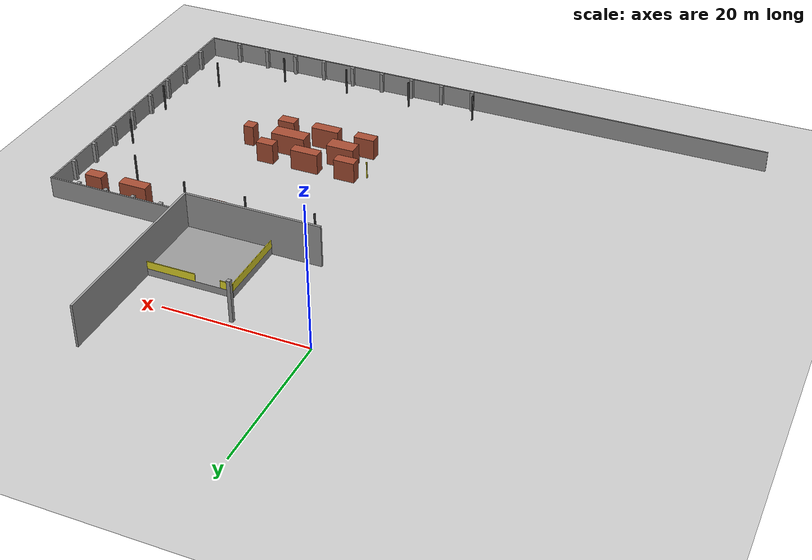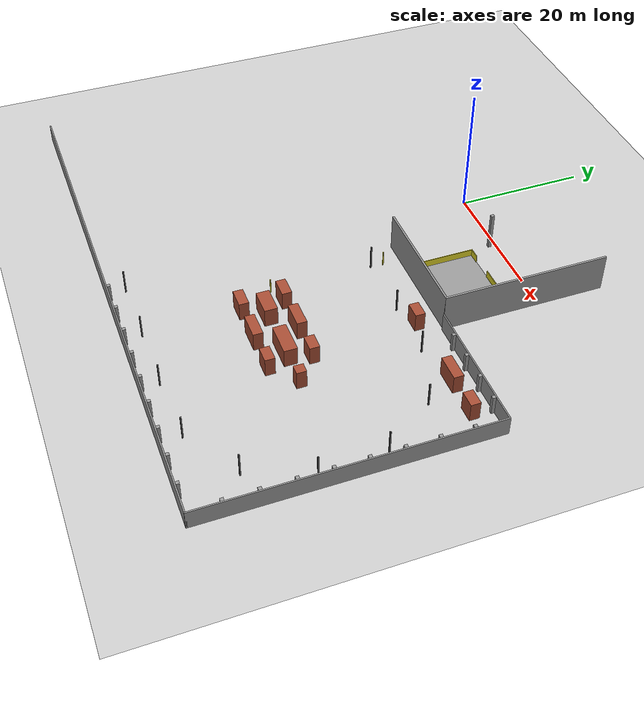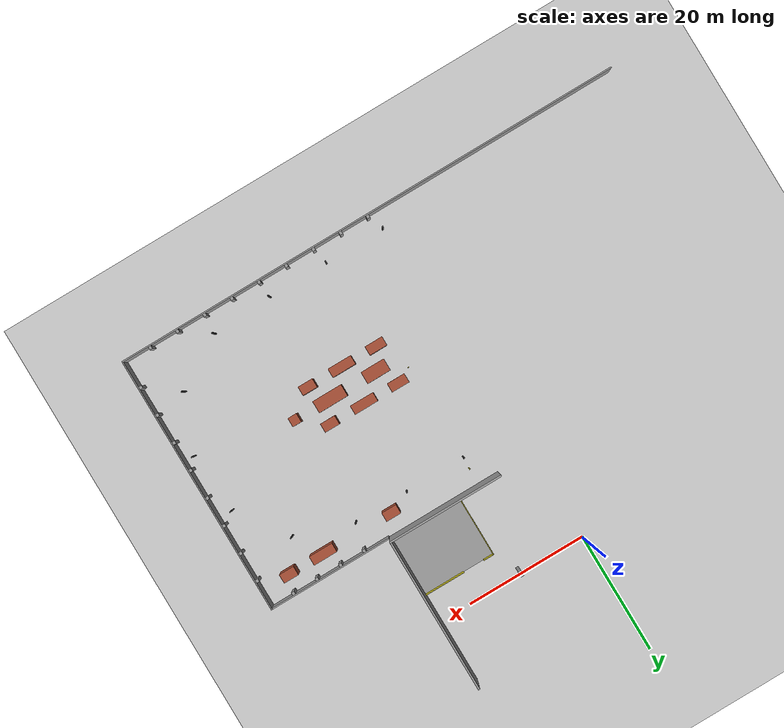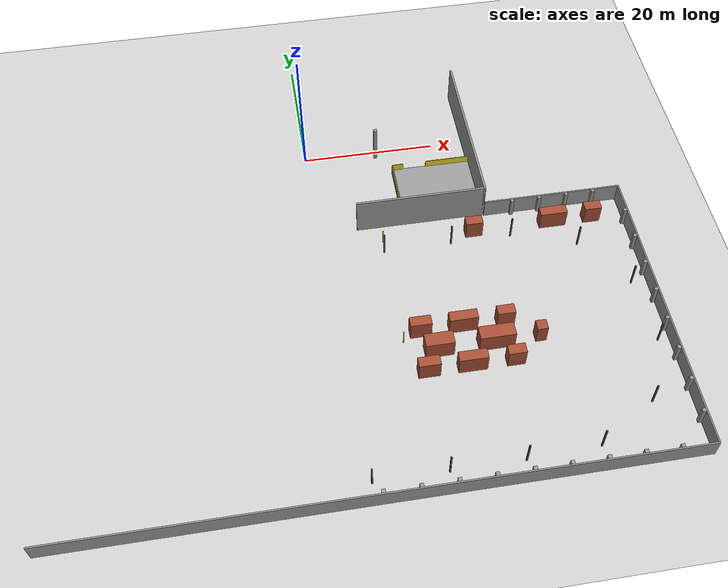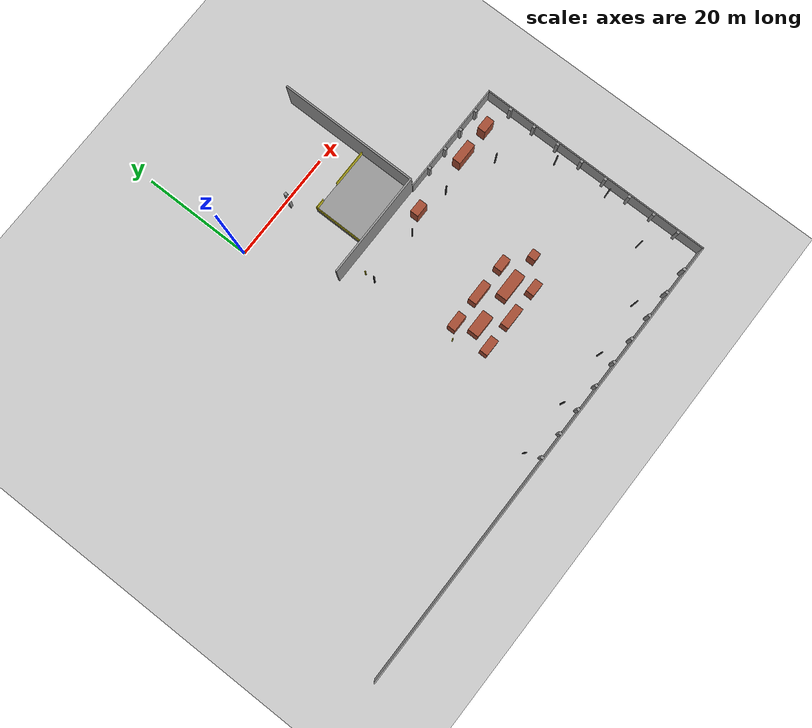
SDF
<sdf version="1.6">
 <world name="default">
  <include><uri>model://ground_plane</uri></include>
  <include><uri>model://sun</uri></include>
  <model name="mezz_platform">
   <static>true</static>
   <pose>19.0000 -10.0000 0.5000 0.000000 0.000000 0.000000</pose>
   <link name="link">
    <collision name="c"><geometry><box><size>12.0000 10.0000 1.0000</size></box></geometry></collision>
    <visual name="v">
     <geometry><box><size>12.0000 10.0000 1.0000</size></box></geometry>
     <material>
      <script><uri>file://media/materials/scripts/gazebo.material</uri><name>Gazebo/Grey</name></script>
     </material>
    </visual>
   </link>
  </model>
  <model name="mezz_guard_west">
   <static>true</static>
   <pose>13.0500 -10.0000 1.5500 0.000000 0.000000 0.000000</pose>
   <link name="link">
    <collision name="c"><geometry><box><size>0.1000 10.0000 1.1000</size></box></geometry></collision>
    <visual name="v">
     <geometry><box><size>0.1000 10.0000 1.1000</size></box></geometry>
     <material>
      <script><uri>file://media/materials/scripts/gazebo.material</uri><name>Gazebo/Yellow</name></script>
     </material>
    </visual>
   </link>
  </model>
  <model name="mezz_guard_north_0">
   <static>true</static>
   <pose>13.8750 -5.0500 1.5500 0.000000 0.000000 0.000000</pose>
   <link name="link">
    <collision name="c"><geometry><box><size>1.7500 0.1000 1.1000</size></box></geometry></collision>
    <visual name="v">
     <geometry><box><size>1.7500 0.1000 1.1000</size></box></geometry>
     <material>
      <script><uri>file://media/materials/scripts/gazebo.material</uri><name>Gazebo/Yellow</name></script>
     </material>
    </visual>
   </link>
  </model>
  <model name="mezz_guard_north_1">
   <static>true</static>
   <pose>21.6250 -5.0500 1.5500 0.000000 0.000000 0.000000</pose>
   <link name="link">
    <collision name="c"><geometry><box><size>6.7500 0.1000 1.1000</size></box></geometry></collision>
    <visual name="v">
     <geometry><box><size>6.7500 0.1000 1.1000</size></box></geometry>
     <material>
      <script><uri>file://media/materials/scripts/gazebo.material</uri><name>Gazebo/Yellow</name></script>
     </material>
    </visual>
   </link>
  </model>
  <model name="wall_s_1">
   <static>true</static>
   <pose>15.6500 -15.1500 3.0000 0.000000 0.000000 0.000000</pose>
   <link name="link">
    <collision name="c"><geometry><box><size>19.3000 0.3000 6.0000</size></box></geometry></collision>
    <visual name="v">
     <geometry><box><size>19.3000 0.3000 6.0000</size></box></geometry>
     <material>
      <script><uri>file://media/materials/scripts/gazebo.material</uri><name>Gazebo/Grey</name></script>
     </material>
    </visual>
   </link>
  </model>
  <model name="wall_e_0">
   <static>true</static>
   <pose>25.1500 -2.5000 3.0000 0.000000 0.000000 0.000000</pose>
   <link name="link">
    <collision name="c"><geometry><box><size>0.3000 25.6000 6.0000</size></box></geometry></collision>
    <visual name="v">
     <geometry><box><size>0.3000 25.6000 6.0000</size></box></geometry>
     <material>
      <script><uri>file://media/materials/scripts/gazebo.material</uri><name>Gazebo/Grey</name></script>
     </material>
    </visual>
   </link>
  </model>
  <model name="fence_s">
   <static>true</static>
   <pose>3.0000 -58.9000 1.5000 0.000000 0.000000 0.000000</pose>
   <link name="link">
    <collision name="c"><geometry><box><size>86.0000 0.2000 3.0000</size></box></geometry></collision>
    <visual name="v">
     <geometry><box><size>86.0000 0.2000 3.0000</size></box></geometry>
     <material>
      <script><uri>file://media/materials/scripts/gazebo.material</uri><name>Gazebo/Grey</name></script>
     </material>
    </visual>
   </link>
  </model>
  <model name="fence_e">
   <static>true</static>
   <pose>45.9000 -37.1500 1.5000 0.000000 0.000000 0.000000</pose>
   <link name="link">
    <collision name="c"><geometry><box><size>0.2000 43.7000 3.0000</size></box></geometry></collision>
    <visual name="v">
     <geometry><box><size>0.2000 43.7000 3.0000</size></box></geometry>
     <material>
      <script><uri>file://media/materials/scripts/gazebo.material</uri><name>Gazebo/Grey</name></script>
     </material>
    </visual>
   </link>
  </model>
  <model name="fence_n_e">
   <static>true</static>
   <pose>35.6500 -15.4000 1.5000 0.000000 0.000000 0.000000</pose>
   <link name="link">
    <collision name="c"><geometry><box><size>20.7000 0.2000 3.0000</size></box></geometry></collision>
    <visual name="v">
     <geometry><box><size>20.7000 0.2000 3.0000</size></box></geometry>
     <material>
      <script><uri>file://media/materials/scripts/gazebo.material</uri><name>Gazebo/Grey</name></script>
     </material>
    </visual>
   </link>
  </model>
  <model name="fence_post_8">
   <static>true</static>
   <pose>3.0000 -58.5500 1.5000 0.000000 0.000000 0.000000</pose>
   <link name="link">
    <collision name="c"><geometry><box><size>0.5000 0.5000 3.0000</size></box></geometry></collision>
    <visual name="v">
     <geometry><box><size>0.5000 0.5000 3.0000</size></box></geometry>
     <material>
      <script><uri>file://media/materials/scripts/gazebo.material</uri><name>Gazebo/Grey</name></script>
     </material>
    </visual>
   </link>
  </model>
  <model name="fence_post_9">
   <static>true</static>
   <pose>7.7778 -58.5500 1.5000 0.000000 0.000000 0.000000</pose>
   <link name="link">
    <collision name="c"><geometry><box><size>0.5000 0.5000 3.0000</size></box></geometry></collision>
    <visual name="v">
     <geometry><box><size>0.5000 0.5000 3.0000</size></box></geometry>
     <material>
      <script><uri>file://media/materials/scripts/gazebo.material</uri><name>Gazebo/Grey</name></script>
     </material>
    </visual>
   </link>
  </model>
  <model name="fence_post_10">
   <static>true</static>
   <pose>12.5556 -58.5500 1.5000 0.000000 0.000000 0.000000</pose>
   <link name="link">
    <collision name="c"><geometry><box><size>0.5000 0.5000 3.0000</size></box></geometry></collision>
    <visual name="v">
     <geometry><box><size>0.5000 0.5000 3.0000</size></box></geometry>
     <material>
      <script><uri>file://media/materials/scripts/gazebo.material</uri><name>Gazebo/Grey</name></script>
     </material>
    </visual>
   </link>
  </model>
  <model name="fence_post_11">
   <static>true</static>
   <pose>17.3333 -58.5500 1.5000 0.000000 0.000000 0.000000</pose>
   <link name="link">
    <collision name="c"><geometry><box><size>0.5000 0.5000 3.0000</size></box></geometry></collision>
    <visual name="v">
     <geometry><box><size>0.5000 0.5000 3.0000</size></box></geometry>
     <material>
      <script><uri>file://media/materials/scripts/gazebo.material</uri><name>Gazebo/Grey</name></script>
     </material>
    </visual>
   </link>
  </model>
  <model name="fence_post_12">
   <static>true</static>
   <pose>22.1111 -58.5500 1.5000 0.000000 0.000000 0.000000</pose>
   <link name="link">
    <collision name="c"><geometry><box><size>0.5000 0.5000 3.0000</size></box></geometry></collision>
    <visual name="v">
     <geometry><box><size>0.5000 0.5000 3.0000</size></box></geometry>
     <material>
      <script><uri>file://media/materials/scripts/gazebo.material</uri><name>Gazebo/Grey</name></script>
     </material>
    </visual>
   </link>
  </model>
  <model name="fence_post_13">
   <static>true</static>
   <pose>26.8889 -58.5500 1.5000 0.000000 0.000000 0.000000</pose>
   <link name="link">
    <collision name="c"><geometry><box><size>0.5000 0.5000 3.0000</size></box></geometry></collision>
    <visual name="v">
     <geometry><box><size>0.5000 0.5000 3.0000</size></box></geometry>
     <material>
      <script><uri>file://media/materials/scripts/gazebo.material</uri><name>Gazebo/Grey</name></script>
     </material>
    </visual>
   </link>
  </model>
  <model name="fence_post_14">
   <static>true</static>
   <pose>31.6667 -58.5500 1.5000 0.000000 0.000000 0.000000</pose>
   <link name="link">
    <collision name="c"><geometry><box><size>0.5000 0.5000 3.0000</size></box></geometry></collision>
    <visual name="v">
     <geometry><box><size>0.5000 0.5000 3.0000</size></box></geometry>
     <material>
      <script><uri>file://media/materials/scripts/gazebo.material</uri><name>Gazebo/Grey</name></script>
     </material>
    </visual>
   </link>
  </model>
  <model name="fence_post_15">
   <static>true</static>
   <pose>36.4444 -58.5500 1.5000 0.000000 0.000000 0.000000</pose>
   <link name="link">
    <collision name="c"><geometry><box><size>0.5000 0.5000 3.0000</size></box></geometry></collision>
    <visual name="v">
     <geometry><box><size>0.5000 0.5000 3.0000</size></box></geometry>
     <material>
      <script><uri>file://media/materials/scripts/gazebo.material</uri><name>Gazebo/Grey</name></script>
     </material>
    </visual>
   </link>
  </model>
  <model name="fence_post_16">
   <static>true</static>
   <pose>41.2222 -58.5500 1.5000 0.000000 0.000000 0.000000</pose>
   <link name="link">
    <collision name="c"><geometry><box><size>0.5000 0.5000 3.0000</size></box></geometry></collision>
    <visual name="v">
     <geometry><box><size>0.5000 0.5000 3.0000</size></box></geometry>
     <material>
      <script><uri>file://media/materials/scripts/gazebo.material</uri><name>Gazebo/Grey</name></script>
     </material>
    </visual>
   </link>
  </model>
  <model name="fence_post_25">
   <static>true</static>
   <pose>45.5500 -54.1444 1.5000 0.000000 0.000000 0.000000</pose>
   <link name="link">
    <collision name="c"><geometry><box><size>0.5000 0.5000 3.0000</size></box></geometry></collision>
    <visual name="v">
     <geometry><box><size>0.5000 0.5000 3.0000</size></box></geometry>
     <material>
      <script><uri>file://media/materials/scripts/gazebo.material</uri><name>Gazebo/Grey</name></script>
     </material>
    </visual>
   </link>
  </model>
  <model name="fence_post_26">
   <static>true</static>
   <pose>45.5500 -49.2889 1.5000 0.000000 0.000000 0.000000</pose>
   <link name="link">
    <collision name="c"><geometry><box><size>0.5000 0.5000 3.0000</size></box></geometry></collision>
    <visual name="v">
     <geometry><box><size>0.5000 0.5000 3.0000</size></box></geometry>
     <material>
      <script><uri>file://media/materials/scripts/gazebo.material</uri><name>Gazebo/Grey</name></script>
     </material>
    </visual>
   </link>
  </model>
  <model name="fence_post_27">
   <static>true</static>
   <pose>45.5500 -44.4333 1.5000 0.000000 0.000000 0.000000</pose>
   <link name="link">
    <collision name="c"><geometry><box><size>0.5000 0.5000 3.0000</size></box></geometry></collision>
    <visual name="v">
     <geometry><box><size>0.5000 0.5000 3.0000</size></box></geometry>
     <material>
      <script><uri>file://media/materials/scripts/gazebo.material</uri><name>Gazebo/Grey</name></script>
     </material>
    </visual>
   </link>
  </model>
  <model name="fence_post_28">
   <static>true</static>
   <pose>45.5500 -39.5778 1.5000 0.000000 0.000000 0.000000</pose>
   <link name="link">
    <collision name="c"><geometry><box><size>0.5000 0.5000 3.0000</size></box></geometry></collision>
    <visual name="v">
     <geometry><box><size>0.5000 0.5000 3.0000</size></box></geometry>
     <material>
      <script><uri>file://media/materials/scripts/gazebo.material</uri><name>Gazebo/Grey</name></script>
     </material>
    </visual>
   </link>
  </model>
  <model name="fence_post_29">
   <static>true</static>
   <pose>45.5500 -34.7222 1.5000 0.000000 0.000000 0.000000</pose>
   <link name="link">
    <collision name="c"><geometry><box><size>0.5000 0.5000 3.0000</size></box></geometry></collision>
    <visual name="v">
     <geometry><box><size>0.5000 0.5000 3.0000</size></box></geometry>
     <material>
      <script><uri>file://media/materials/scripts/gazebo.material</uri><name>Gazebo/Grey</name></script>
     </material>
    </visual>
   </link>
  </model>
  <model name="fence_post_30">
   <static>true</static>
   <pose>45.5500 -29.8667 1.5000 0.000000 0.000000 0.000000</pose>
   <link name="link">
    <collision name="c"><geometry><box><size>0.5000 0.5000 3.0000</size></box></geometry></collision>
    <visual name="v">
     <geometry><box><size>0.5000 0.5000 3.0000</size></box></geometry>
     <material>
      <script><uri>file://media/materials/scripts/gazebo.material</uri><name>Gazebo/Grey</name></script>
     </material>
    </visual>
   </link>
  </model>
  <model name="fence_post_31">
   <static>true</static>
   <pose>45.5500 -25.0111 1.5000 0.000000 0.000000 0.000000</pose>
   <link name="link">
    <collision name="c"><geometry><box><size>0.5000 0.5000 3.0000</size></box></geometry></collision>
    <visual name="v">
     <geometry><box><size>0.5000 0.5000 3.0000</size></box></geometry>
     <material>
      <script><uri>file://media/materials/scripts/gazebo.material</uri><name>Gazebo/Grey</name></script>
     </material>
    </visual>
   </link>
  </model>
  <model name="fence_post_32">
   <static>true</static>
   <pose>45.5500 -20.1556 1.5000 0.000000 0.000000 0.000000</pose>
   <link name="link">
    <collision name="c"><geometry><box><size>0.5000 0.5000 3.0000</size></box></geometry></collision>
    <visual name="v">
     <geometry><box><size>0.5000 0.5000 3.0000</size></box></geometry>
     <material>
      <script><uri>file://media/materials/scripts/gazebo.material</uri><name>Gazebo/Grey</name></script>
     </material>
    </visual>
   </link>
  </model>
  <model name="fence_post_35">
   <static>true</static>
   <pose>29.4400 -15.7500 1.5000 0.000000 0.000000 0.000000</pose>
   <link name="link">
    <collision name="c"><geometry><box><size>0.5000 0.5000 3.0000</size></box></geometry></collision>
    <visual name="v">
     <geometry><box><size>0.5000 0.5000 3.0000</size></box></geometry>
     <material>
      <script><uri>file://media/materials/scripts/gazebo.material</uri><name>Gazebo/Grey</name></script>
     </material>
    </visual>
   </link>
  </model>
  <model name="fence_post_36">
   <static>true</static>
   <pose>33.5800 -15.7500 1.5000 0.000000 0.000000 0.000000</pose>
   <link name="link">
    <collision name="c"><geometry><box><size>0.5000 0.5000 3.0000</size></box></geometry></collision>
    <visual name="v">
     <geometry><box><size>0.5000 0.5000 3.0000</size></box></geometry>
     <material>
      <script><uri>file://media/materials/scripts/gazebo.material</uri><name>Gazebo/Grey</name></script>
     </material>
    </visual>
   </link>
  </model>
  <model name="fence_post_37">
   <static>true</static>
   <pose>37.7200 -15.7500 1.5000 0.000000 0.000000 0.000000</pose>
   <link name="link">
    <collision name="c"><geometry><box><size>0.5000 0.5000 3.0000</size></box></geometry></collision>
    <visual name="v">
     <geometry><box><size>0.5000 0.5000 3.0000</size></box></geometry>
     <material>
      <script><uri>file://media/materials/scripts/gazebo.material</uri><name>Gazebo/Grey</name></script>
     </material>
    </visual>
   </link>
  </model>
  <model name="fence_post_38">
   <static>true</static>
   <pose>41.8600 -15.7500 1.5000 0.000000 0.000000 0.000000</pose>
   <link name="link">
    <collision name="c"><geometry><box><size>0.5000 0.5000 3.0000</size></box></geometry></collision>
    <visual name="v">
     <geometry><box><size>0.5000 0.5000 3.0000</size></box></geometry>
     <material>
      <script><uri>file://media/materials/scripts/gazebo.material</uri><name>Gazebo/Grey</name></script>
     </material>
    </visual>
   </link>
  </model>
  <model name="lamp_0">
   <static>true</static>
   <pose>28.3497 -20.0003 2.0000 0.000000 0.000000 0.000000</pose>
   <link name="link">
    <collision name="c"><geometry><box><size>0.2000 0.2000 4.0000</size></box></geometry></collision>
    <visual name="v">
     <geometry><box><size>0.2000 0.2000 4.0000</size></box></geometry>
     <material>
      <script><uri>file://media/materials/scripts/gazebo.material</uri><name>Gazebo/DarkGrey</name></script>
     </material>
    </visual>
   </link>
  </model>
  <model name="lamp_1">
   <static>true</static>
   <pose>37.7511 -23.1264 2.0000 0.000000 0.000000 0.000000</pose>
   <link name="link">
    <collision name="c"><geometry><box><size>0.2000 0.2000 4.0000</size></box></geometry></collision>
    <visual name="v">
     <geometry><box><size>0.2000 0.2000 4.0000</size></box></geometry>
     <material>
      <script><uri>file://media/materials/scripts/gazebo.material</uri><name>Gazebo/DarkGrey</name></script>
     </material>
    </visual>
   </link>
  </model>
  <model name="lamp_2">
   <static>true</static>
   <pose>43.5095 -31.1887 2.0000 0.000000 0.000000 0.000000</pose>
   <link name="link">
    <collision name="c"><geometry><box><size>0.2000 0.2000 4.0000</size></box></geometry></collision>
    <visual name="v">
     <geometry><box><size>0.2000 0.2000 4.0000</size></box></geometry>
     <material>
      <script><uri>file://media/materials/scripts/gazebo.material</uri><name>Gazebo/DarkGrey</name></script>
     </material>
    </visual>
   </link>
  </model>
  <model name="lamp_3">
   <static>true</static>
   <pose>44.2053 -41.1957 2.0000 0.000000 0.000000 0.000000</pose>
   <link name="link">
    <collision name="c"><geometry><box><size>0.2000 0.2000 4.0000</size></box></geometry></collision>
    <visual name="v">
     <geometry><box><size>0.2000 0.2000 4.0000</size></box></geometry>
     <material>
      <script><uri>file://media/materials/scripts/gazebo.material</uri><name>Gazebo/DarkGrey</name></script>
     </material>
    </visual>
   </link>
  </model>
  <model name="lamp_4">
   <static>true</static>
   <pose>40.4424 -50.3608 2.0000 0.000000 0.000000 0.000000</pose>
   <link name="link">
    <collision name="c"><geometry><box><size>0.2000 0.2000 4.0000</size></box></geometry></collision>
    <visual name="v">
     <geometry><box><size>0.2000 0.2000 4.0000</size></box></geometry>
     <material>
      <script><uri>file://media/materials/scripts/gazebo.material</uri><name>Gazebo/DarkGrey</name></script>
     </material>
    </visual>
   </link>
  </model>
  <model name="lamp_5">
   <static>true</static>
   <pose>32.0045 -55.5533 2.0000 0.000000 0.000000 0.000000</pose>
   <link name="link">
    <collision name="c"><geometry><box><size>0.2000 0.2000 4.0000</size></box></geometry></collision>
    <visual name="v">
     <geometry><box><size>0.2000 0.2000 4.0000</size></box></geometry>
     <material>
      <script><uri>file://media/materials/scripts/gazebo.material</uri><name>Gazebo/DarkGrey</name></script>
     </material>
    </visual>
   </link>
  </model>
  <model name="lamp_6">
   <static>true</static>
   <pose>21.9500 -56.0000 2.0000 0.000000 0.000000 0.000000</pose>
   <link name="link">
    <collision name="c"><geometry><box><size>0.2000 0.2000 4.0000</size></box></geometry></collision>
    <visual name="v">
     <geometry><box><size>0.2000 0.2000 4.0000</size></box></geometry>
     <material>
      <script><uri>file://media/materials/scripts/gazebo.material</uri><name>Gazebo/DarkGrey</name></script>
     </material>
    </visual>
   </link>
  </model>
  <model name="lamp_7">
   <static>true</static>
   <pose>11.9500 -56.0000 2.0000 0.000000 0.000000 0.000000</pose>
   <link name="link">
    <collision name="c"><geometry><box><size>0.2000 0.2000 4.0000</size></box></geometry></collision>
    <visual name="v">
     <geometry><box><size>0.2000 0.2000 4.0000</size></box></geometry>
     <material>
      <script><uri>file://media/materials/scripts/gazebo.material</uri><name>Gazebo/DarkGrey</name></script>
     </material>
    </visual>
   </link>
  </model>
  <model name="lamp_8">
   <static>true</static>
   <pose>1.9500 -56.0000 2.0000 0.000000 0.000000 0.000000</pose>
   <link name="link">
    <collision name="c"><geometry><box><size>0.2000 0.2000 4.0000</size></box></geometry></collision>
    <visual name="v">
     <geometry><box><size>0.2000 0.2000 4.0000</size></box></geometry>
     <material>
      <script><uri>file://media/materials/scripts/gazebo.material</uri><name>Gazebo/DarkGrey</name></script>
     </material>
    </visual>
   </link>
  </model>
  <model name="lamp_18">
   <static>true</static>
   <pose>9.3500 -20.0000 2.0000 0.000000 0.000000 0.000000</pose>
   <link name="link">
    <collision name="c"><geometry><box><size>0.2000 0.2000 4.0000</size></box></geometry></collision>
    <visual name="v">
     <geometry><box><size>0.2000 0.2000 4.0000</size></box></geometry>
     <material>
      <script><uri>file://media/materials/scripts/gazebo.material</uri><name>Gazebo/DarkGrey</name></script>
     </material>
    </visual>
   </link>
  </model>
  <model name="lamp_19">
   <static>true</static>
   <pose>19.3500 -20.0000 2.0000 0.000000 0.000000 0.000000</pose>
   <link name="link">
    <collision name="c"><geometry><box><size>0.2000 0.2000 4.0000</size></box></geometry></collision>
    <visual name="v">
     <geometry><box><size>0.2000 0.2000 4.0000</size></box></geometry>
     <material>
      <script><uri>file://media/materials/scripts/gazebo.material</uri><name>Gazebo/DarkGrey</name></script>
     </material>
    </visual>
   </link>
  </model>
  <model name="signal_0">
   <static>true</static>
   <pose>9.4500 -35.9500 1.2500 0.000000 0.000000 0.000000</pose>
   <link name="link">
    <collision name="c"><geometry><box><size>0.1500 0.1500 2.5000</size></box></geometry></collision>
    <visual name="v">
     <geometry><box><size>0.1500 0.1500 2.5000</size></box></geometry>
     <material>
      <script><uri>file://media/materials/scripts/gazebo.material</uri><name>Gazebo/Yellow</name></script>
     </material>
    </visual>
   </link>
  </model>
  <model name="signal_3">
   <static>true</static>
   <pose>9.4500 -18.0500 1.2500 0.000000 0.000000 0.000000</pose>
   <link name="link">
    <collision name="c"><geometry><box><size>0.1500 0.1500 2.5000</size></box></geometry></collision>
    <visual name="v">
     <geometry><box><size>0.1500 0.1500 2.5000</size></box></geometry>
     <material>
      <script><uri>file://media/materials/scripts/gazebo.material</uri><name>Gazebo/Yellow</name></script>
     </material>
    </visual>
   </link>
  </model>
  <model name="building_3">
   <static>true</static>
   <pose>14.0000 -38.0000 1.5000 0.000000 0.000000 0.000000</pose>
   <link name="link">
    <collision name="c"><geometry><box><size>4.0000 2.0000 3.0000</size></box></geometry></collision>
    <visual name="v">
     <geometry><box><size>4.0000 2.0000 3.0000</size></box></geometry>
     <material>
      <script><uri>file://media/materials/scripts/gazebo.material</uri><name>Gazebo/Bricks</name></script>
     </material>
    </visual>
   </link>
  </model>
  <model name="building_4">
   <static>true</static>
   <pose>22.0000 -38.0000 1.5000 0.000000 0.000000 0.000000</pose>
   <link name="link">
    <collision name="c"><geometry><box><size>5.0000 2.0000 3.0000</size></box></geometry></collision>
    <visual name="v">
     <geometry><box><size>5.0000 2.0000 3.0000</size></box></geometry>
     <material>
      <script><uri>file://media/materials/scripts/gazebo.material</uri><name>Gazebo/Bricks</name></script>
     </material>
    </visual>
   </link>
  </model>
  <model name="building_5">
   <static>true</static>
   <pose>28.2500 -38.0000 1.5000 0.000000 0.000000 0.000000</pose>
   <link name="link">
    <collision name="c"><geometry><box><size>1.5000 1.5000 3.0000</size></box></geometry></collision>
    <visual name="v">
     <geometry><box><size>1.5000 1.5000 3.0000</size></box></geometry>
     <material>
      <script><uri>file://media/materials/scripts/gazebo.material</uri><name>Gazebo/Bricks</name></script>
     </material>
    </visual>
   </link>
  </model>
  <model name="building_9">
   <static>true</static>
   <pose>12.0000 -34.7500 1.5000 0.000000 0.000000 0.000000</pose>
   <link name="link">
    <collision name="c"><geometry><box><size>3.0000 1.5000 3.0000</size></box></geometry></collision>
    <visual name="v">
     <geometry><box><size>3.0000 1.5000 3.0000</size></box></geometry>
     <material>
      <script><uri>file://media/materials/scripts/gazebo.material</uri><name>Gazebo/Bricks</name></script>
     </material>
    </visual>
   </link>
  </model>
  <model name="building_10">
   <static>true</static>
   <pose>18.0000 -34.7500 1.5000 0.000000 0.000000 0.000000</pose>
   <link name="link">
    <collision name="c"><geometry><box><size>4.0000 1.5000 3.0000</size></box></geometry></collision>
    <visual name="v">
     <geometry><box><size>4.0000 1.5000 3.0000</size></box></geometry>
     <material>
      <script><uri>file://media/materials/scripts/gazebo.material</uri><name>Gazebo/Bricks</name></script>
     </material>
    </visual>
   </link>
  </model>
  <model name="building_11">
   <static>true</static>
   <pose>24.0000 -34.7500 1.5000 0.000000 0.000000 0.000000</pose>
   <link name="link">
    <collision name="c"><geometry><box><size>2.5000 1.5000 3.0000</size></box></geometry></collision>
    <visual name="v">
     <geometry><box><size>2.5000 1.5000 3.0000</size></box></geometry>
     <material>
      <script><uri>file://media/materials/scripts/gazebo.material</uri><name>Gazebo/Bricks</name></script>
     </material>
    </visual>
   </link>
  </model>
  <model name="building_15">
   <static>true</static>
   <pose>12.0000 -41.2500 1.5000 0.000000 0.000000 0.000000</pose>
   <link name="link">
    <collision name="c"><geometry><box><size>3.0000 1.5000 3.0000</size></box></geometry></collision>
    <visual name="v">
     <geometry><box><size>3.0000 1.5000 3.0000</size></box></geometry>
     <material>
      <script><uri>file://media/materials/scripts/gazebo.material</uri><name>Gazebo/Bricks</name></script>
     </material>
    </visual>
   </link>
  </model>
  <model name="building_16">
   <static>true</static>
   <pose>18.0000 -41.2500 1.5000 0.000000 0.000000 0.000000</pose>
   <link name="link">
    <collision name="c"><geometry><box><size>4.0000 1.5000 3.0000</size></box></geometry></collision>
    <visual name="v">
     <geometry><box><size>4.0000 1.5000 3.0000</size></box></geometry>
     <material>
      <script><uri>file://media/materials/scripts/gazebo.material</uri><name>Gazebo/Bricks</name></script>
     </material>
    </visual>
   </link>
  </model>
  <model name="building_17">
   <static>true</static>
   <pose>24.0000 -41.2500 1.5000 0.000000 0.000000 0.000000</pose>
   <link name="link">
    <collision name="c"><geometry><box><size>2.5000 1.5000 3.0000</size></box></geometry></collision>
    <visual name="v">
     <geometry><box><size>2.5000 1.5000 3.0000</size></box></geometry>
     <material>
      <script><uri>file://media/materials/scripts/gazebo.material</uri><name>Gazebo/Bricks</name></script>
     </material>
    </visual>
   </link>
  </model>
  <model name="building_21">
   <static>true</static>
   <pose>23.0000 -18.5000 1.5000 0.000000 0.000000 0.000000</pose>
   <link name="link">
    <collision name="c"><geometry><box><size>2.5000 1.5000 3.0000</size></box></geometry></collision>
    <visual name="v">
     <geometry><box><size>2.5000 1.5000 3.0000</size></box></geometry>
     <material>
      <script><uri>file://media/materials/scripts/gazebo.material</uri><name>Gazebo/Bricks</name></script>
     </material>
    </visual>
   </link>
  </model>
  <model name="building_22">
   <static>true</static>
   <pose>35.0000 -18.5000 1.5000 0.000000 0.000000 0.000000</pose>
   <link name="link">
    <collision name="c"><geometry><box><size>4.0000 1.5000 3.0000</size></box></geometry></collision>
    <visual name="v">
     <geometry><box><size>4.0000 1.5000 3.0000</size></box></geometry>
     <material>
      <script><uri>file://media/materials/scripts/gazebo.material</uri><name>Gazebo/Bricks</name></script>
     </material>
    </visual>
   </link>
  </model>
  <model name="building_23">
   <static>true</static>
   <pose>41.0000 -18.5000 1.5000 0.000000 0.000000 0.000000</pose>
   <link name="link">
    <collision name="c"><geometry><box><size>2.5000 1.5000 3.0000</size></box></geometry></collision>
    <visual name="v">
     <geometry><box><size>2.5000 1.5000 3.0000</size></box></geometry>
     <material>
      <script><uri>file://media/materials/scripts/gazebo.material</uri><name>Gazebo/Bricks</name></script>
     </material>
    </visual>
   </link>
  </model>
  <model name="pillar_1">
   <static>true</static>
   <pose>11.0000 -1.0000 3.0000 0.000000 0.000000 0.000000</pose>
   <link name="link">
    <collision name="c"><geometry><box><size>0.5000 0.5000 6.0000</size></box></geometry></collision>
    <visual name="v">
     <geometry><box><size>0.5000 0.5000 6.0000</size></box></geometry>
     <material>
      <script><uri>file://media/materials/scripts/gazebo.material</uri><name>Gazebo/Grey</name></script>
     </material>
    </visual>
   </link>
  </model>
 </world>
</sdf>
